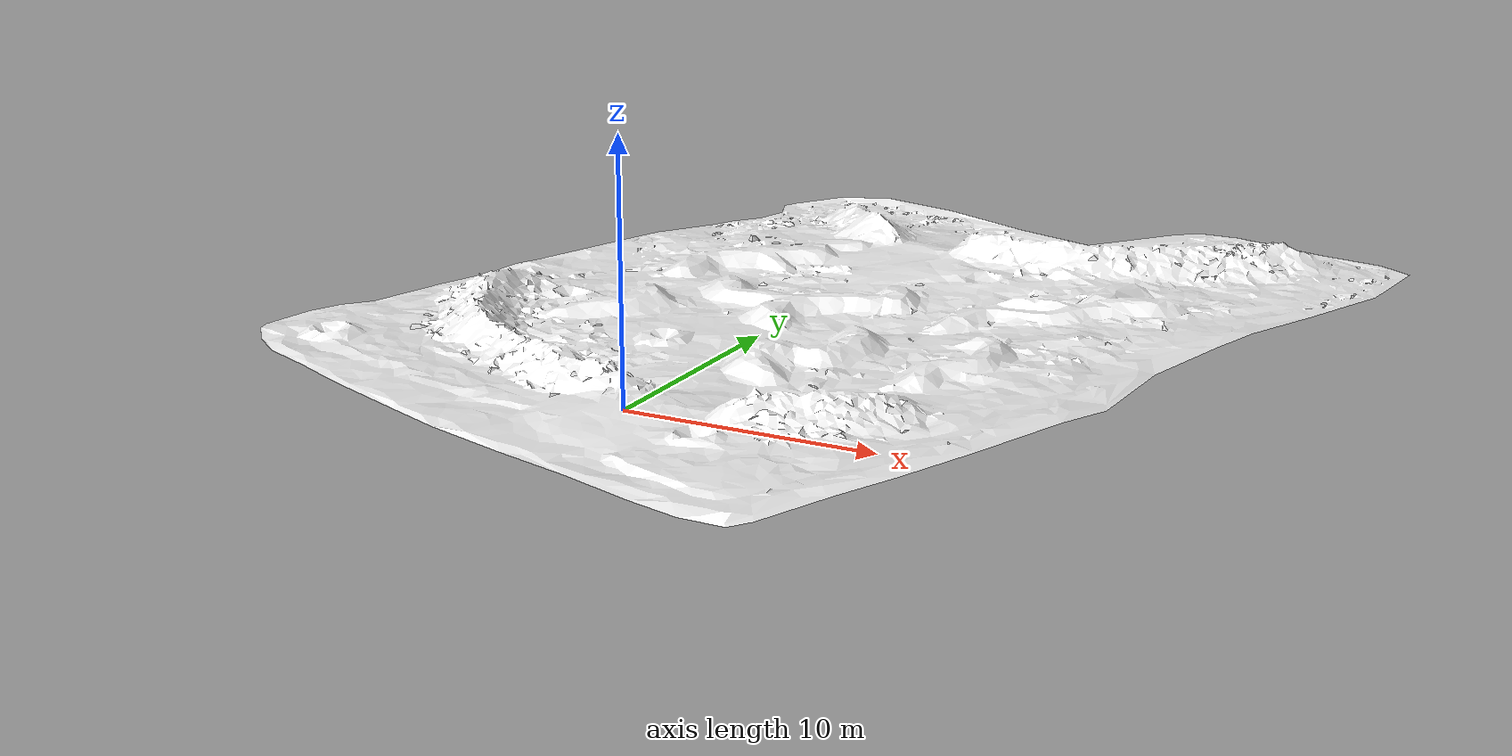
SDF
<?xml version="1.0"?>
<sdf version="1.7">
  <model name="erc_marsyard_2026">
    <static>true</static><self_collide>false</self_collide>
    <link name="terrain_link">
      <visual name="terrain_visual">
        <cast_shadows>false</cast_shadows>
        <geometry>
          <mesh>
            <uri>model://erc_marsyard_2026/meshes/marsyard_visual.obj</uri>
          </mesh>
        </geometry>
        <material>
          <ambient>1 1 1 1</ambient>
          <diffuse>1 1 1 1</diffuse>
          <double_sided>true</double_sided>
          <pbr>
            <metal>
              <albedo_map>model://erc_marsyard_2026/materials/textures/marsyard_orthophoto.jpg</albedo_map>
            </metal>
          </pbr>
        </material>
      </visual>
      <collision name="terrain_collision">
        <geometry><mesh><uri>model://erc_marsyard_2026/meshes/marsyard_collision.obj</uri></mesh></geometry>
        <surface>
          <friction><ode><mu>1.20</mu><mu2>1.15</mu2><slip1>0.008</slip1><slip2>0.012</slip2></ode></friction>
          <contact><ode><kp>25000000</kp><kd>3</kd><max_vel>0.05</max_vel><min_depth>0.001</min_depth></ode></contact>
          <bounce><restitution_coefficient>0.0</restitution_coefficient><threshold>100000</threshold></bounce>
        </surface>
      </collision>
    </link>
  </model>
</sdf>
